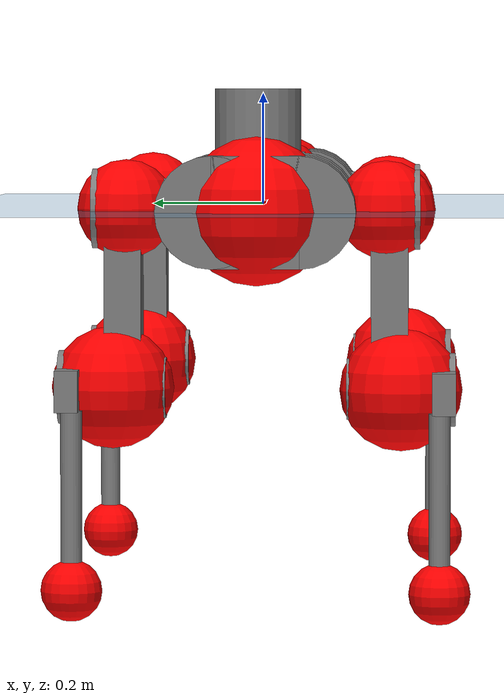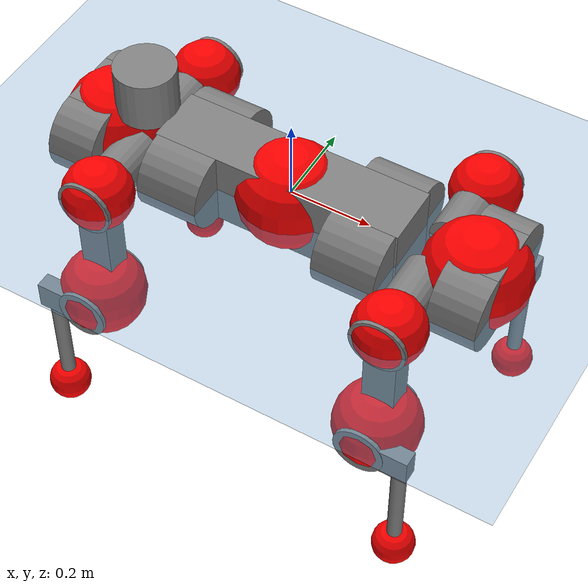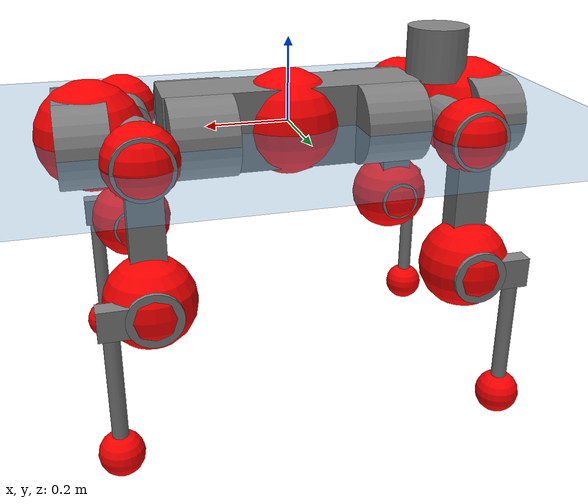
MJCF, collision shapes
<mujoco model="anymal_c">
  <compiler angle="radian" assetdir="assets" balanceinertia="true" inertiafromgeom="false"/>

  <option timestep="0.005" density="1.2" viscosity="2e-05"/>

  <size nkey="1"/>

  <visual>
    <quality shadowsize="8192"/>
    <map shadowclip="0.5"/>
  </visual>

  <default>
    <default class="/">
      <material specular="0" shininess="0.25"/>
      <geom contype="0" conaffinity="0" group="1" solref="-1000 -80"/>
      <site size="0.01 0.005 0.005" group="5"/>
      <general forcelimited="true" forcerange="-80 80" biastype="affine" gainprm="80" biasprm="0 -80 -2"/>
      <default class="anymal_c">
        <joint armature="0.01" damping="0.01" frictionloss="0.1"/>
        <default class="visual">
          <geom type="mesh" group="2"/>
          <default class="visual_zflip"/>
        </default>
        <default class="collision">
          <geom type="cylinder" group="3"/>
          <default class="foot">
            <geom size="0.03 0 0" type="sphere" condim="6" priority="1" friction="0.8 0.02 0.01" solimp="0.015 1 0.03"/>
          </default>
        </default>
      </default>
      <default class="reward_collision_sphere">
        <geom group="5" rgba="1 0 0 1"/>
      </default>
    </default>
  </default>

  <asset>
    <texture type="skybox" colorspace="auto" name="//unnamed_texture_0" builtin="gradient" rgb1="0.95 0.95 0.95" rgb2="0.95 0.95 0.95" width="100" height="600"/>
    <texture type="2d" colorspace="auto" name="texplane" builtin="checker" rgb1="0.345 0.575 0.748" rgb2="0.345 0.575 0.748" markrgb="1 1 1" width="512" height="512"/>
    <texture type="2d" colorspace="linear" name="base" file="base.png"/>
    <texture type="2d" colorspace="linear" name="top_shell" file="top_shell.png"/>
    <texture type="2d" colorspace="linear" name="bottom_shell" file="bottom_shell.png"/>
    <texture type="2d" colorspace="linear" name="remote" file="remote.png"/>
    <texture type="2d" colorspace="linear" name="hatch" file="hatch.png"/>
    <texture type="2d" colorspace="linear" name="handle" file="handle.png"/>
    <texture type="2d" colorspace="linear" name="face" file="face.png"/>
    <texture type="2d" colorspace="linear" name="battery" file="battery.png"/>
    <texture type="2d" colorspace="linear" name="lidar_cage" file="lidar_cage.png"/>
    <texture type="2d" colorspace="linear" name="depth_camera" file="depth_camera.png"/>
    <texture type="2d" colorspace="linear" name="wide_angle_camera" file="wide_angle_camera.png"/>
    <texture type="2d" colorspace="linear" name="lidar" file="lidar.png"/>
    <texture type="2d" colorspace="linear" name="drive" file="drive.png"/>
    <texture type="2d" colorspace="linear" name="hip_l" file="hip_l.png"/>
    <texture type="2d" colorspace="linear" name="shank_l" file="shank_l.png"/>
    <texture type="2d" colorspace="linear" name="foot" file="foot.png"/>
    <texture type="2d" colorspace="linear" name="thigh" file="thigh.png"/>
    <texture type="2d" colorspace="linear" name="shank_r" file="shank_r.png"/>
    <texture type="2d" colorspace="linear" name="hip_r" file="hip_r.png"/>
    <material name="MatPlane" class="/" texture="texplane" texuniform="true" texrepeat="2 2" specular="0.9" shininess="0.5"/>
    <material name="black_plastic" class="/" rgba="0.007 0.007 0.007 1"/>
    <material name="green" class="/" rgba="0.052 0.178 0.033 1"/>
    <material name="red" class="/" rgba="0.178 0.006 0.005 1"/>
    <material name="yellow" class="/" rgba="0.178 0.119 0.006 1"/>
    <material name="lwl" class="/" rgba="0.8 0.8 0.8 1"/>
    <material name="base" class="/" texture="base"/>
    <material name="top_shell" class="/" texture="top_shell"/>
    <material name="bottom_shell" class="/" texture="bottom_shell"/>
    <material name="hip_l" class="/" texture="hip_l"/>
    <material name="thigh" class="/" texture="thigh"/>
    <material name="shank_l" class="/" texture="shank_l"/>
    <material name="foot" class="/" texture="foot"/>
    <material name="hip_r" class="/" texture="hip_r"/>
    <material name="shank" class="/" texture="shank_r"/>
    <material name="hatch" class="/" texture="hatch"/>
    <material name="remote" class="/" texture="remote"/>
    <material name="handle" class="/" texture="handle"/>
    <material name="face" class="/" texture="face"/>
    <material name="depth_camera" class="/" texture="depth_camera"/>
    <material name="wide_angle_camera" class="/" texture="wide_angle_camera"/>
    <material name="battery" class="/" texture="battery"/>
    <material name="lidar_cage" class="/" texture="lidar_cage"/>
    <material name="lidar" class="/" texture="lidar"/>
    <material name="drive" class="/" texture="drive"/>
    <mesh name="base_0" class="/" file="base_0.obj"/>
    <mesh name="base_1" class="/" file="base_1.obj"/>
    <mesh name="base_2" class="/" file="base_2.obj"/>
    <mesh name="base_3" class="/" file="base_3.obj"/>
    <mesh name="base_4" class="/" file="base_4.obj"/>
    <mesh name="base_5" class="/" file="base_5.obj"/>
    <mesh name="top_shell" class="/" file="top_shell.obj"/>
    <mesh name="bottom_shell" class="/" file="bottom_shell.obj"/>
    <mesh name="remote" class="/" file="remote.obj"/>
    <mesh name="handle" class="/" file="handle.obj"/>
    <mesh name="face" class="/" file="face.obj"/>
    <mesh name="wide_angle_camera" class="/" file="wide_angle_camera.obj"/>
    <mesh name="depth_camera" class="/" file="depth_camera.obj"/>
    <mesh name="battery" class="/" file="battery.obj"/>
    <mesh name="lidar_cage" class="/" file="lidar_cage.obj"/>
    <mesh name="lidar" class="/" file="lidar.obj"/>
    <mesh name="drive" class="/" file="drive.obj"/>
    <mesh name="hip_l" class="/" file="hip_l.obj"/>
    <mesh name="thigh" class="/" file="thigh.obj"/>
    <mesh name="shank_l" class="/" file="shank_l.obj"/>
    <mesh name="foot" class="/" file="foot.obj"/>
    <mesh name="hip_r" class="/" file="hip_r.obj"/>
    <mesh name="hatch" class="/" file="hatch.obj"/>
    <mesh name="shank_r" class="/" file="shank_r.obj"/>
  </asset>

  <worldbody>
    <geom name="floor" class="/" size="100 100 0.125" type="plane" group="0" material="MatPlane"/>
    <light name="toplight_shadow" class="/" pos="0 0 5" dir="0.0990148 0.0990148 -0.990148" type="directional" ambient="0.04 0.04 0.04" diffuse="0.55 0.55 0.55" specular="0.12 0.12 0.12"/>
    <light name="toplight_fill" class="/" pos="0 0 5" dir="0.0990148 0.0990148 -0.990148" type="directional" castshadow="false" ambient="0.04 0.04 0.04" diffuse="0.3 0.3 0.3" specular="0.08 0.08 0.08"/>
    <body name="trunk" childclass="anymal_c" pos="-0.000109917 -0.00282594 -0.000881736" quat="1 -2.55015e-05 9.51824e-06 2.36706e-05">
      <inertial pos="0.00240735 -0.0027911 0.0547315" quat="0.499629 0.49427 0.504496 0.501549" mass="21.9479" diaginertia="0.729927 0.800165 0.325101"/>
      <joint name="//unnamed_joint_0" type="free" armature="0" damping="0" frictionloss="0"/>
      <geom name="//unnamed_geom_1" class="visual" material="green" mesh="base_0"/>
      <geom name="//unnamed_geom_2" class="visual" material="yellow" mesh="base_1"/>
      <geom name="//unnamed_geom_3" class="visual" material="red" mesh="base_2"/>
      <geom name="//unnamed_geom_4" class="visual" material="black_plastic" mesh="base_3"/>
      <geom name="//unnamed_geom_5" class="visual" material="lwl" mesh="base_4"/>
      <geom name="//unnamed_geom_6" class="visual" material="base" mesh="base_5"/>
      <geom name="trunk_1" class="collision" size="0.307764 0.0742879 0.095513" type="box"/>
      <geom name="trunk_2" class="collision" size="0.095513 0.0769411" pos="0.225367 0.074174 0" quat="0.707107 0 0.707107 0"/>
      <geom name="trunk_3" class="collision" size="0.095513 0.0769411" pos="-0.225367 0.074174 0" quat="0.707107 0 0.707107 0"/>
      <geom name="trunk_4" class="collision" size="0.095513 0.0769411" pos="0.225367 -0.074174 0" quat="0.707107 0 0.707107 0"/>
      <geom name="trunk_5" class="collision" size="0.095513 0.0769411" pos="-0.225367 -0.074174 0" quat="0.707107 0 0.707107 0"/>
      <geom name="//unnamed_geom_12" class="visual" material="top_shell" mesh="top_shell"/>
      <geom name="//unnamed_geom_13" class="visual" material="bottom_shell" mesh="bottom_shell"/>
      <geom name="//unnamed_geom_14" class="visual" material="remote" mesh="remote"/>
      <geom name="//unnamed_geom_15" class="visual" material="handle" mesh="handle"/>
      <geom name="//unnamed_geom_16" class="visual" pos="0.429492 0 0" quat="1 0 0 0" material="face" mesh="face"/>
      <geom name="trunk_6" class="collision" size="0.0583691 0.0742879 0.095513" pos="0.486481 0 0" type="box"/>
      <geom name="//unnamed_geom_18" class="collision" size="0.095513 0.0583691" pos="0.486481 0.074174 0" quat="0.707107 0 0.707107 0"/>
      <geom name="//unnamed_geom_19" class="collision" size="0.095513 0.0583691" pos="0.486481 -0.074174 0" quat="0.707107 0 0.707107 0"/>
      <geom name="//unnamed_geom_20" class="visual" pos="0.478349 0 -0.0321625" quat="0.965926 0 0.258819 0" material="depth_camera" mesh="depth_camera"/>
      <geom name="//unnamed_geom_21" class="visual" pos="0.531554 0 0.0162869" material="wide_angle_camera" mesh="wide_angle_camera"/>
      <geom name="//unnamed_geom_22" class="visual_zflip" pos="-0.429492 0 0" quat="0 0 0 1" material="face" mesh="face"/>
      <geom name="trunk_7" class="collision" size="0.0583691 0.0742879 0.095513" pos="-0.486481 0 0" quat="0 0 0 1" type="box"/>
      <geom name="//unnamed_geom_24" class="collision" size="0.095513 0.0583691" pos="-0.486481 -0.074174 0" quat="0 -0.707107 0 0.707107"/>
      <geom name="//unnamed_geom_25" class="collision" size="0.095513 0.0583691" pos="-0.486481 0.074174 0" quat="0 -0.707107 0 0.707107"/>
      <geom name="//unnamed_geom_26" class="visual" pos="-0.478349 0 -0.0321625" quat="0 -0.258819 0 0.965926" material="depth_camera" mesh="depth_camera"/>
      <geom name="//unnamed_geom_27" class="visual_zflip" pos="-0.531554 0 0.0162869" quat="0 0 0 1" material="wide_angle_camera" mesh="wide_angle_camera"/>
      <geom name="//unnamed_geom_28" class="visual" material="battery" mesh="battery"/>
      <geom name="//unnamed_geom_29" class="visual" pos="0 0.0813292 0.0312119" quat="0.683013 -0.183013 0.183013 0.683013" material="depth_camera" mesh="depth_camera"/>
      <geom name="//unnamed_geom_30" class="visual" pos="0 -0.0813292 0.0312119" quat="0.683013 0.183013 0.183013 -0.683013" material="depth_camera" mesh="depth_camera"/>
      <geom name="//unnamed_geom_31" class="visual" pos="-0.377165 0 0.0799659" quat="1 0 0 0" material="lidar_cage" mesh="lidar_cage"/>
      <geom name="trunk_8" class="collision" size="0.0742879 0.0636754" pos="-0.377165 0 0.145244"/>
      <geom name="//unnamed_geom_33" class="visual" pos="-0.377165 9.21669e-06 0.15471" quat="0.707107 0 0 -0.707107" material="lidar" mesh="lidar"/>
      <geom name="//unnamed_geom_34" class="visual" pos="0.310747 0.110211 -4.88923e-10" quat="0.258819 0.965926 0 0" material="drive" mesh="drive"/>
      <geom name="//unnamed_geom_35" class="visual" pos="0.310747 -0.110211 4.88923e-10" quat="0.258819 -0.965926 0 0" material="drive" mesh="drive"/>
      <geom name="//unnamed_geom_36" class="visual" pos="-0.310747 0.110211 4.88923e-10" quat="0 0 0.965926 -0.258819" material="drive" mesh="drive"/>
      <geom name="//unnamed_geom_37" class="visual" pos="-0.310747 -0.110211 -4.88923e-10" quat="0 0 -0.965926 -0.258819" material="drive" mesh="drive"/>
      <geom name="//unnamed_geom_38" class="visual" pos="0.120196 0 0.0794219" quat="1 0 0 0" material="hatch" mesh="hatch"/>
      <geom name="//unnamed_geom_39" class="reward_collision_sphere" size="0.127351"/>
      <geom name="//unnamed_geom_40" class="reward_collision_sphere" size="0.127351" pos="0.466276 0 0"/>
      <geom name="//unnamed_geom_41" class="reward_collision_sphere" size="0.127351" pos="-0.466276 0 0"/>
      <site name="imu" pos="0.271949 0.0207586 0.0362188" size="0.0106126"/>
      <camera name="track" pos="0 -2.11926 0" quat="0.707107 0.707107 0 0" mode="trackcom"/>
      <camera name="ego_camera" pos="0.466276 0 -0.0435188" quat="-0.5 -0.5 0.5 0.5"/>
      <body name="LF_HIP" pos="0.313907 0.112107 0.00255723" quat="0.258731 0.965948 0.00102806 0.000886436">
        <inertial pos="0.05981 -0.0161857 -0.00700145" quat="-0.125295 0.708073 -0.132624 0.682161" mass="3.19357" diaginertia="0.00698661 0.00626762 0.00500062"/>
        <joint name="LF_HAA" pos="0 0 0" axis="0.999999 -0.000170274 0.00100736" stiffness="0.00592327" range="-0.689707 0.529454" armature="0.010669" damping="0" frictionloss="0.120569"/>
        <geom name="//unnamed_geom_42" class="visual" pos="0 -2.87611e-05 4.72399e-06" quat="0.258819 -0.965926 0 0" material="hip_l" mesh="hip_l"/>
        <geom name="//unnamed_geom_43" class="visual" pos="0.0620665 -0.0755257 -0.0438144" quat="0.183013 -0.683013 0.683013 0.183013" material="drive" mesh="drive"/>
        <geom name="//unnamed_geom_44" class="collision" size="0.0530628 0.0742879" pos="0.0620665 -0.0126729 -0.00751244" quat="-0.353553 -0.612372 0.612372 -0.353553"/>
        <body name="LF_THIGH" pos="0.0622394 -0.0754647 -0.0451848" quat="0.18199 -0.683663 0.682481 0.183584">
          <inertial pos="0.034907 0.00256752 -0.268213" quat="0.993605 -0.0173624 -0.0778998 0.0798697" mass="3.66865" diaginertia="0.0356206 0.0398081 0.00633739"/>
          <joint name="LF_HFE" pos="0 0 0" axis="0.999909 0.0102292 0.00875016" range="-3.11048 3.18627" armature="0.0120936" damping="0.00500555" frictionloss="0.111792"/>
          <geom name="//unnamed_geom_45" class="visual" pos="-0.000466756 -7.35498e-07 0" quat="0.707107 0 0 -0.707107" material="thigh" mesh="thigh"/>
          <geom name="//unnamed_geom_46" class="collision" size="0.0689816 0.0424502" pos="0.0414467 0 0" quat="0.5 0.5 -0.5 -0.5"/>
          <geom name="//unnamed_geom_47" class="collision" size="0.0397971 0.0318377 0.14997" pos="0.0310851 0 -0.153746" quat="0.707107 0 0 -0.707107" type="box"/>
          <geom name="//unnamed_geom_48" class="visual" pos="0.103928 0 -0.310072" quat="1 0 0 0" material="drive" mesh="drive"/>
          <geom name="//unnamed_geom_49" class="collision" size="0.0530628 0.0742879" pos="0.0313959 0 -0.310072" quat="0.707107 0 0.707107 0"/>
          <geom name="//unnamed_geom_50" class="reward_collision_sphere" size="0.0849005" pos="0.0259042 0 0"/>
          <body name="LF_SHANK" pos="0.103385 -0.00245179 -0.311988" quat="0.999999 -0.000135438 0.000568582 0.00103465">
            <inertial pos="0.00837174 -0.0650196 -0.0896538" quat="0.992943 -0.115837 -0.000852087 -0.0253974" mass="0.714452" diaginertia="0.0117397 0.0127091 0.00166657"/>
            <joint name="LF_KFE" pos="0 0 0" axis="0.999993 0.00209601 0.00293915" range="-3.17933 3.14883" armature="0.00921949" damping="0.00927701" frictionloss="0.107804"/>
            <geom name="//unnamed_geom_51" class="visual" pos="-0.000152199 -0.000811532 0" quat="0.707107 0 0 -0.707107" material="shank_l" mesh="shank_l"/>
            <geom name="LF_kfe_act" class="collision" size="0.0636754 0.0212251" pos="0.0207234 0 0" quat="0.5 0.5 -0.5 -0.5"/>
            <geom name="//unnamed_geom_53" class="collision" size="0.0610212 0.0358174 0.0201639" pos="0.0207234 -0.0609276 0" quat="0.5 0.5 -0.5 -0.5" type="box"/>
            <geom name="//unnamed_geom_54" class="visual" pos="0.013522 -0.0934558 -0.367702" quat="0.382683 0 0 -0.92388" material="foot" mesh="foot"/>
            <geom name="LF_calf" class="collision" size="0.018572 0.149905" pos="0.013522 -0.0931943 -0.183851" quat="0.707107 0 0 -0.707107"/>
            <geom name="LF_foot" class="foot" size="0.0303265" pos="0.013522 -0.0931943 -0.343222" quat="0.707107 0 0 -0.707107"/>
            <geom name="//unnamed_geom_57" class="reward_collision_sphere" size="0.106126" pos="-0.0518084 0 0"/>
            <geom name="//unnamed_geom_58" class="reward_collision_sphere" size="0.0530628" pos="0.013522 -0.0931943 -0.343222"/>
            <site name="LF_foot" class="foot" pos="0.013522 -0.0931943 -0.343222" quat="0.707107 0 0 -0.707107" size="0.0106126"/>
          </body>
        </body>
      </body>
      <body name="RF_HIP" pos="0.310968 -0.112386 -0.00108007" quat="0.258655 -0.96597 5.14123e-05 8.90027e-05">
        <inertial pos="0.0580057 0.0161653 -0.00952056" quat="0.133639 0.679121 0.129499 0.710046" mass="3.18276" diaginertia="0.00689656 0.0063888 0.00514048"/>
        <joint name="RF_HAA" pos="0 0 0" axis="0.999882 -0.0113415 0.0103199" range="-0.490172 0.714267" armature="0.0107521" damping="0.0118307" frictionloss="0.110397"/>
        <geom name="//unnamed_geom_59" class="visual" pos="0 2.87609e-05 4.72398e-06" quat="0.258819 0.965926 0 0" material="hip_r" mesh="hip_r"/>
        <geom name="//unnamed_geom_60" class="visual" pos="0.0620665 0.0755257 -0.0438144" quat="0.183013 0.683013 0.683013 -0.183013" material="drive" mesh="drive"/>
        <geom name="//unnamed_geom_61" class="collision" size="0.0530628 0.0742879" pos="0.0620665 0.0126729 -0.00751244" quat="-0.353553 0.612372 0.612372 0.353553"/>
        <body name="RF_THIGH" pos="0.0645471 0.0780572 -0.0434657" quat="0.182176 0.68302 0.682962 -0.184006">
          <inertial pos="0.0300736 -0.00172559 -0.266764" quat="0.994104 -0.00162808 -0.0755123 0.0777963" mass="3.92915" diaginertia="0.037014 0.0413753 0.00650271"/>
          <joint name="RF_HFE" pos="0 0 0" axis="0.999967 -0.00407792 0.00708256" range="-3.18763 3.13996" armature="0.010071" damping="0.00982147" frictionloss="0.106785"/>
          <geom name="//unnamed_geom_62" class="visual" pos="-0.000466756 -7.35498e-07 0" quat="0.707107 0 0 -0.707107" material="thigh" mesh="thigh"/>
          <geom name="//unnamed_geom_63" class="collision" size="0.0689816 0.0424502" pos="0.0414467 0 0" quat="0.5 0.5 0.5 0.5"/>
          <geom name="//unnamed_geom_64" class="collision" size="0.0397971 0.0318377 0.14997" pos="0.0310851 0 -0.153746" quat="0.707107 0 0 0.707107" type="box"/>
          <geom name="//unnamed_geom_65" class="visual" pos="0.103928 0 -0.310072" quat="1 0 0 0" material="drive" mesh="drive"/>
          <geom name="//unnamed_geom_66" class="collision" size="0.0530628 0.0742879" pos="0.0313959 0 -0.310072" quat="0.707107 0 0.707107 0"/>
          <geom name="//unnamed_geom_67" class="reward_collision_sphere" size="0.0849005" pos="0.0259042 0 0"/>
          <body name="RF_SHANK" pos="0.101537 -0.0017107 -0.312345" quat="0.999999 0.000175562 6.16129e-05 -0.0013671">
            <inertial pos="0.00710282 0.064783 -0.084789" quat="0.993516 0.1122 0.00763336 0.0167172" mass="0.694904" diaginertia="0.0120477 0.0122835 0.00171417"/>
            <joint name="RF_KFE" pos="0 0 0" axis="0.999941 0.00688917 -0.00838251" range="-3.14983 3.1445" armature="0.0117638" damping="0.0219211" frictionloss="0.0918497"/>
            <geom name="//unnamed_geom_68" class="visual" pos="-0.000152198 0.000811531 0" quat="0.707107 0 0 0.707107" material="shank" mesh="shank_r"/>
            <geom name="RF_kfe_act" class="collision" size="0.0636754 0.0212251" pos="0.0207234 0 0" quat="0.5 0.5 0.5 0.5"/>
            <geom name="//unnamed_geom_70" class="collision" size="0.0610212 0.0358174 0.0201639" pos="0.0207234 0.0609276 0" quat="0.5 0.5 0.5 0.5" type="box"/>
            <geom name="//unnamed_geom_71" class="visual" pos="0.013522 0.0934558 -0.367702" quat="0.382683 0 0 0.92388" material="foot" mesh="foot"/>
            <geom name="RF_calf" class="collision" size="0.018572 0.149905" pos="0.013522 0.0931943 -0.183851" quat="0.707107 0 0 0.707107"/>
            <geom name="RF_foot" class="foot" size="0.025904" pos="0.013522 0.0931943 -0.343222" quat="0.707107 0 0 0.707107"/>
            <geom name="//unnamed_geom_74" class="reward_collision_sphere" size="0.106126" pos="-0.0518084 0 0"/>
            <geom name="//unnamed_geom_75" class="reward_collision_sphere" size="0.0530628" pos="0.013522 0.0931943 -0.343222"/>
            <site name="RF_foot" class="foot" pos="0.013522 0.0931943 -0.343222" quat="0.707107 0 0 0.707107" size="0.0106126"/>
          </body>
        </body>
      </body>
      <body name="LH_HIP" pos="-0.311352 0.110321 0.00104156" quat="-0.000196977 8.95746e-07 0.966097 -0.258179">
        <inertial pos="0.0593543 0.0132785 -0.00684258" quat="0.134648 0.678744 0.128698 0.710361" mass="3.39184" diaginertia="0.00710118 0.00667989 0.00508537"/>
        <joint name="LH_HAA" pos="0 0 0" axis="0.999995 -0.00154764 0.00258836" range="-0.506089 0.697185" armature="0.0105777" damping="0.0064065" frictionloss="0.10214"/>
        <geom name="//unnamed_geom_76" class="visual" pos="0 2.87609e-05 4.72398e-06" quat="-0.258819 -0.965926 0 0" material="hip_r" mesh="hip_r"/>
        <geom name="//unnamed_geom_77" class="visual" pos="0.0620665 0.0755257 -0.0438144" quat="0.183013 0.683013 0.683013 -0.183013" material="drive" mesh="drive"/>
        <geom name="//unnamed_geom_78" class="collision" size="0.0530628 0.0742879" pos="0.0620665 0.0126729 -0.00751244" quat="-0.353553 0.612372 0.612372 0.353553"/>
        <body name="LH_THIGH" pos="0.0586727 0.0788485 -0.0467479" quat="0.183014 0.683008 0.683017 -0.183013">
          <inertial pos="0.0323515 0.00102413 -0.269315" quat="0.991775 0.00293702 -0.0829761 0.0974148" mass="3.78891" diaginertia="0.0366207 0.0411637 0.00652953"/>
          <joint name="LH_HFE" pos="0 0 0" axis="0.999991 0.0019997 0.00362149" stiffness="0.000915082" range="-3.1989 3.19131" armature="0.0100497" damping="0" frictionloss="0.11111"/>
          <geom name="//unnamed_geom_79" class="visual" pos="-0.000466756 -7.35498e-07 0" quat="0.707107 0 0 -0.707107" material="thigh" mesh="thigh"/>
          <geom name="//unnamed_geom_80" class="collision" size="0.0689816 0.0424502" pos="0.0414467 0 0" quat="0.5 0.5 -0.5 -0.5"/>
          <geom name="//unnamed_geom_81" class="collision" size="0.0397971 0.0318377 0.14997" pos="0.0310851 0 -0.153746" quat="0.707107 0 0 -0.707107" type="box"/>
          <geom name="//unnamed_geom_82" class="visual" pos="0.103928 0 -0.310072" quat="1 0 0 0" material="drive" mesh="drive"/>
          <geom name="//unnamed_geom_83" class="collision" size="0.0530628 0.0742879" pos="0.0313959 0 -0.310072" quat="0.707107 0 0.707107 0"/>
          <geom name="//unnamed_geom_84" class="reward_collision_sphere" size="0.0849005" pos="0.0259042 0 0"/>
          <body name="LH_SHANK" pos="0.101405 -0.00129767 -0.309597" quat="1 1.7208e-05 5.84626e-06 -6.67973e-06">
            <inertial pos="0.00656516 0.0650961 -0.0865553" quat="0.992953 0.115729 -0.00261651 0.0253785" mass="0.748639" diaginertia="0.0129331 0.0127908 0.0017543"/>
            <joint name="LH_KFE" pos="0 0 0" axis="0.999847 0.0101079 0.0142544" range="-3.10634 3.08388" armature="0.0107846" damping="0" frictionloss="0.103426"/>
            <geom name="//unnamed_geom_85" class="visual" pos="-0.000152198 0.000811531 0" quat="-0.707107 0 0 -0.707107" material="shank" mesh="shank_r"/>
            <geom name="LH_kfe_act" class="collision" size="0.0636754 0.0212251" pos="0.0207234 0 0" quat="0.5 0.5 -0.5 -0.5"/>
            <geom name="//unnamed_geom_87" class="collision" size="0.0610212 0.0358174 0.0201639" pos="0.0207234 0.0609276 0" quat="0.5 0.5 -0.5 -0.5" type="box"/>
            <geom name="//unnamed_geom_88" class="visual" pos="0.013522 0.0934558 -0.367702" quat="-0.382683 0 0 -0.92388" material="foot" mesh="foot"/>
            <geom name="LH_calf" class="collision" size="0.018572 0.149905" pos="0.013522 0.0931943 -0.183851" quat="0.707107 0 0 -0.707107"/>
            <geom name="LH_foot" class="foot" size="0.0343765" pos="0.013522 0.0931943 -0.343222" quat="0.707107 0 0 -0.707107"/>
            <geom name="//unnamed_geom_91" class="reward_collision_sphere" size="0.106126" pos="-0.0518084 0 0"/>
            <geom name="//unnamed_geom_92" class="reward_collision_sphere" size="0.0530628" pos="0.013522 0.0931943 -0.343222"/>
            <site name="LH_foot" class="foot" pos="0.013522 0.0931943 -0.343222" quat="0.707107 0 0 -0.707107" size="0.0106126"/>
          </body>
        </body>
      </body>
      <body name="RH_HIP" pos="-0.310748 -0.108395 -0.000769262" quat="0.000731595 0.00104206 -0.966035 -0.258407">
        <inertial pos="0.058656 -0.0135947 -0.0119317" quat="-0.128114 0.709568 -0.134006 0.679811" mass="3.41694" diaginertia="0.00746016 0.00685582 0.00531867"/>
        <joint name="RH_HAA" pos="0 0 0" axis="0.999926 -0.0108815 0.00549485" range="-0.70161 0.444175" armature="0.0105392" damping="0.0135085" frictionloss="0.100828"/>
        <geom name="//unnamed_geom_93" class="visual" pos="0 -2.87611e-05 4.72399e-06" quat="-0.258819 0.965926 0 0" material="hip_l" mesh="hip_l"/>
        <geom name="//unnamed_geom_94" class="visual" pos="0.0620665 -0.0755257 -0.0438144" quat="-0.183013 0.683013 -0.683013 -0.183013" material="drive" mesh="drive"/>
        <geom name="//unnamed_geom_95" class="collision" size="0.0530628 0.0742879" pos="0.0620665 -0.0126729 -0.00751244" quat="0.353553 0.612372 -0.612372 0.353553"/>
        <body name="RH_THIGH" pos="0.0617953 -0.0742412 -0.0441791" quat="-0.184075 0.683264 -0.682445 -0.183128">
          <inertial pos="0.0322472 -0.00241452 -0.264569" quat="0.993031 -0.0054896 -0.0796582 0.0866796" mass="3.5472" diaginertia="0.0346299 0.0387331 0.00618746"/>
          <joint name="RH_HFE" pos="0 0 0" axis="0.999929 -0.00876468 -0.00807663" range="-3.15756 3.19394" armature="0.0107837" damping="0.0107262" frictionloss="0.101531"/>
          <geom name="//unnamed_geom_96" class="visual" pos="-0.000466756 -7.35498e-07 0" quat="0.707107 0 0 -0.707107" material="thigh" mesh="thigh"/>
          <geom name="//unnamed_geom_97" class="collision" size="0.0689816 0.0424502" pos="0.0414467 0 0" quat="0.5 0.5 0.5 0.5"/>
          <geom name="//unnamed_geom_98" class="collision" size="0.0397971 0.0318377 0.14997" pos="0.0310851 0 -0.153746" quat="0.707107 0 0 0.707107" type="box"/>
          <geom name="//unnamed_geom_99" class="visual" pos="0.103928 0 -0.310072" quat="1 0 0 0" material="drive" mesh="drive"/>
          <geom name="//unnamed_geom_100" class="collision" size="0.0530628 0.0742879" pos="0.0313959 0 -0.310072" quat="0.707107 0 0.707107 0"/>
          <geom name="//unnamed_geom_101" class="reward_collision_sphere" size="0.0849005" pos="0.0259042 0 0"/>
          <body name="RH_SHANK" pos="0.102782 -0.000610504 -0.311423" quat="1 -0.000718578 0.000478695 0.000262691">
            <inertial pos="0.00718813 -0.0646286 -0.088011" quat="0.993026 -0.11621 -0.000113663 -0.0198828" mass="0.712843" diaginertia="0.0125911 0.0123868 0.00170297"/>
            <joint name="RH_KFE" pos="0 0 0" axis="0.999954 0.00784934 0.00545208" range="-3.18463 3.18237" armature="0.00926146" damping="0.0097205" frictionloss="0.108955"/>
            <geom name="//unnamed_geom_102" class="visual" pos="-0.000152199 -0.000811532 0" quat="0.707107 0 0 -0.707107" material="shank_l" mesh="shank_l"/>
            <geom name="RH_kfe_act" class="collision" size="0.0636754 0.0212251" pos="0.0207234 0 0" quat="0.5 0.5 0.5 0.5"/>
            <geom name="//unnamed_geom_104" class="collision" size="0.0610212 0.0358174 0.0201639" pos="0.0207234 -0.0609276 0" quat="0.5 0.5 0.5 0.5" type="box"/>
            <geom name="//unnamed_geom_105" class="visual" pos="0.013522 -0.0934558 -0.367702" quat="0.382683 0 0 -0.92388" material="foot" mesh="foot"/>
            <geom name="RH_calf" class="collision" size="0.018572 0.149905" pos="0.013522 -0.0931943 -0.183851" quat="0.707107 0 0 0.707107"/>
            <geom name="RH_foot" class="foot" size="0.0282699" pos="0.013522 -0.0931943 -0.343222" quat="0.707107 0 0 0.707107"/>
            <geom name="//unnamed_geom_108" class="reward_collision_sphere" size="0.106126" pos="-0.0518084 0 0"/>
            <geom name="//unnamed_geom_109" class="reward_collision_sphere" size="0.0530628" pos="0.013522 -0.0931943 -0.343222"/>
            <site name="RH_foot" class="foot" pos="0.013522 -0.0931943 -0.343222" quat="0.707107 0 0 0.707107" size="0.0106126"/>
          </body>
        </body>
      </body>
    </body>
  </worldbody>

  <contact>
    <pair class="/" geom1="floor" geom2="LF_foot" name="//unnamed_contact_0"/>
    <pair class="/" geom1="floor" geom2="RF_foot" name="//unnamed_contact_1"/>
    <pair class="/" geom1="floor" geom2="LH_foot" name="//unnamed_contact_2"/>
    <pair class="/" geom1="floor" geom2="RH_foot" name="//unnamed_contact_3"/>
  </contact>

  <actuator>
    <general name="LF_HAA" class="/" joint="LF_HAA" forcerange="-89.6885 89.6885" gainprm="90.1202" biasprm="0 -90.1202 -2.22954"/>
    <general name="LF_HFE" class="/" joint="LF_HFE" forcerange="-76.4824 76.4824" gainprm="90.1202" biasprm="0 -90.1202 -2.22954"/>
    <general name="LF_KFE" class="/" joint="LF_KFE" forcerange="-87.0037 87.0037" gainprm="90.1202" biasprm="0 -90.1202 -2.22954"/>
    <general name="RF_HAA" class="/" joint="RF_HAA" forcerange="-92.5538 92.5538" gainprm="90.1202" biasprm="0 -90.1202 -2.22954"/>
    <general name="RF_HFE" class="/" joint="RF_HFE" forcerange="-93.2457 93.2457" gainprm="90.1202" biasprm="0 -90.1202 -2.22954"/>
    <general name="RF_KFE" class="/" joint="RF_KFE" forcerange="-94.2057 94.2057" gainprm="90.1202" biasprm="0 -90.1202 -2.22954"/>
    <general name="LH_HAA" class="/" joint="LH_HAA" forcerange="-88.0133 88.0133" gainprm="90.1202" biasprm="0 -90.1202 -2.22954"/>
    <general name="LH_HFE" class="/" joint="LH_HFE" forcerange="-82.9482 82.9482" gainprm="90.1202" biasprm="0 -90.1202 -2.22954"/>
    <general name="LH_KFE" class="/" joint="LH_KFE" forcerange="-79.551 79.551" gainprm="90.1202" biasprm="0 -90.1202 -2.22954"/>
    <general name="RH_HAA" class="/" joint="RH_HAA" forcerange="-78.6085 78.6085" gainprm="90.1202" biasprm="0 -90.1202 -2.22954"/>
    <general name="RH_HFE" class="/" joint="RH_HFE" forcerange="-88.1265 88.1265" gainprm="90.1202" biasprm="0 -90.1202 -2.22954"/>
    <general name="RH_KFE" class="/" joint="RH_KFE" forcerange="-85.3701 85.3701" gainprm="90.1202" biasprm="0 -90.1202 -2.22954"/>
  </actuator>

  <sensor>
    <gyro site="imu" name="imu_angular_velocity"/>
    <velocimeter site="imu" name="imu_linear_velocity"/>
    <framelinvel objtype="site" objname="LF_foot" name="LF_foot_global_linear_velocity"/>
    <framelinvel objtype="site" objname="RF_foot" name="RF_foot_global_linear_velocity"/>
    <framelinvel objtype="site" objname="LH_foot" name="LH_foot_global_linear_velocity"/>
    <framelinvel objtype="site" objname="RH_foot" name="RH_foot_global_linear_velocity"/>
  </sensor>

  <keyframe>
    <key name="home" qpos="0 0 0.55 1 0 0 0 0 0.4 -0.8 0 -0.4 0.8 0 -0.4 0.8 0 0.4 -0.8"/>
  </keyframe>
</mujoco>
